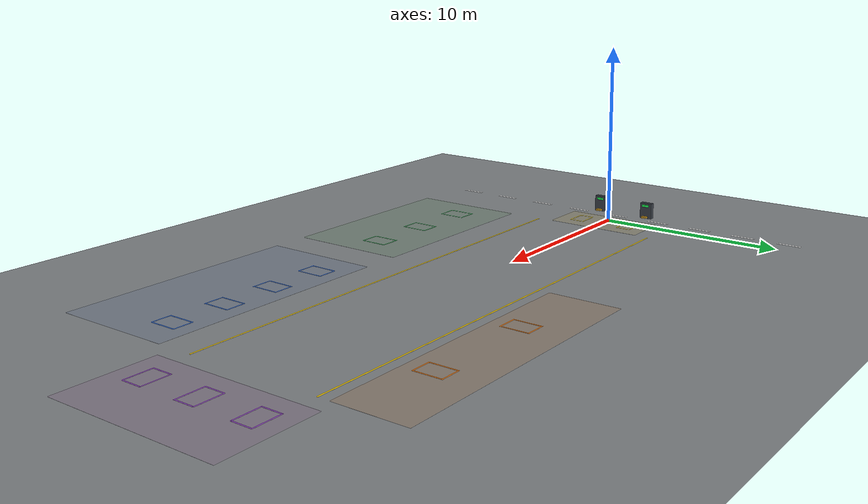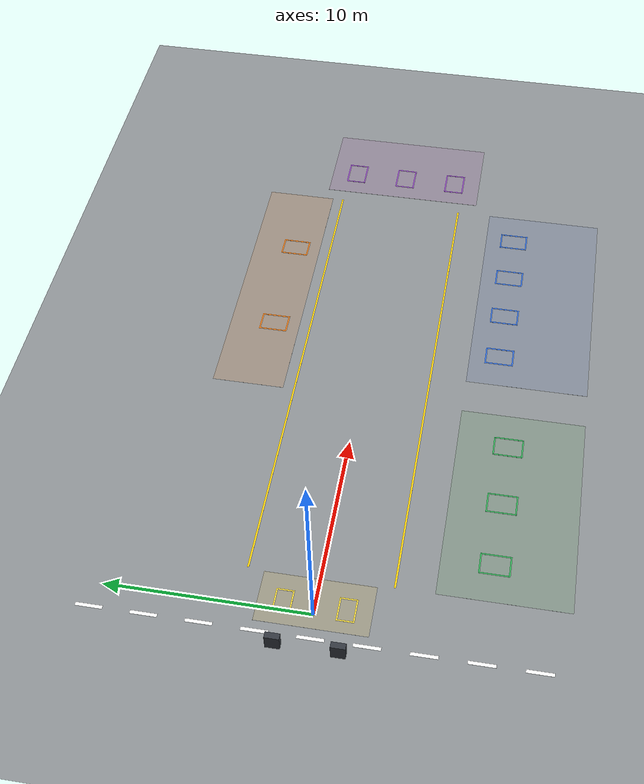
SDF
<sdf version="1.6">
 <world name="yektemak_factory">
  <model name="ground_plane">
   <static>true</static>
   <link name="link">
    <collision name="collision">
     <geometry><plane><normal>0 0 1</normal><size>120 120</size></plane></geometry>
     <surface><friction><ode><mu>1.0</mu><mu2>1.0</mu2></ode></friction></surface>
    </collision>
    <visual name="visual">
     <cast_shadows>false</cast_shadows>
     <geometry><plane><normal>0 0 1</normal><size>120 120</size></plane></geometry>
     <material>
      <ambient>0.44 0.46 0.46 1</ambient>
      <diffuse>0.55 0.57 0.58 1</diffuse>
      <specular>0.1 0.1 0.1 1</specular>
     </material>
    </visual>
   </link>
  </model>
  <model name="chargers">
   <static>true</static>
   <link name="link">
    <collision name="b99_c">
     <pose>-1.8 1.5 0.45 0 0 0</pose>
     <geometry><box><size>0.3 0.7 0.9</size></box></geometry>
    </collision>
    <visual name="b99_v">
     <pose>-1.8 1.5 0.45 0 0 0</pose>
     <geometry><box><size>0.3 0.7 0.9</size></box></geometry>
     <material>
      <ambient>0.16 0.18 0.20 1</ambient>
      <diffuse>0.2 0.22 0.25 1</diffuse>
      <specular>0.1 0.1 0.1 1</specular>
     </material>
    </visual>
    <visual name="b100_v">
     <pose>-1.63 1.5 0.75 0 0 0</pose>
     <cast_shadows>false</cast_shadows>
     <geometry><box><size>0.04 0.4 0.12</size></box></geometry>
     <material>
      <ambient>0.08 0.72 0.24 1</ambient>
      <diffuse>0.1 0.9 0.3 1</diffuse>
      <specular>0.1 0.1 0.1 1</specular>
      <emissive>0.1 0.9 0.3 1</emissive>
     </material>
    </visual>
    <collision name="b101_c">
     <pose>-1.5 1.5 0.1 0 0 0</pose>
     <geometry><box><size>0.25 0.3 0.08</size></box></geometry>
    </collision>
    <visual name="b101_v">
     <pose>-1.5 1.5 0.1 0 0 0</pose>
     <geometry><box><size>0.25 0.3 0.08</size></box></geometry>
     <material>
      <ambient>0.60 0.44 0.08 1</ambient>
      <diffuse>0.75 0.55 0.1 1</diffuse>
      <specular>0.1 0.1 0.1 1</specular>
     </material>
    </visual>
    <collision name="b102_c">
     <pose>-1.8 -1.5 0.45 0 0 0</pose>
     <geometry><box><size>0.3 0.7 0.9</size></box></geometry>
    </collision>
    <visual name="b102_v">
     <pose>-1.8 -1.5 0.45 0 0 0</pose>
     <geometry><box><size>0.3 0.7 0.9</size></box></geometry>
     <material>
      <ambient>0.16 0.18 0.20 1</ambient>
      <diffuse>0.2 0.22 0.25 1</diffuse>
      <specular>0.1 0.1 0.1 1</specular>
     </material>
    </visual>
    <visual name="b103_v">
     <pose>-1.63 -1.5 0.75 0 0 0</pose>
     <cast_shadows>false</cast_shadows>
     <geometry><box><size>0.04 0.4 0.12</size></box></geometry>
     <material>
      <ambient>0.08 0.72 0.24 1</ambient>
      <diffuse>0.1 0.9 0.3 1</diffuse>
      <specular>0.1 0.1 0.1 1</specular>
      <emissive>0.1 0.9 0.3 1</emissive>
     </material>
    </visual>
    <collision name="b104_c">
     <pose>-1.5 -1.5 0.1 0 0 0</pose>
     <geometry><box><size>0.25 0.3 0.08</size></box></geometry>
    </collision>
    <visual name="b104_v">
     <pose>-1.5 -1.5 0.1 0 0 0</pose>
     <geometry><box><size>0.25 0.3 0.08</size></box></geometry>
     <material>
      <ambient>0.60 0.44 0.08 1</ambient>
      <diffuse>0.75 0.55 0.1 1</diffuse>
      <specular>0.1 0.1 0.1 1</specular>
     </material>
    </visual>
   </link>
  </model>
  <model name="floor_markings">
   <static>true</static>
   <link name="link">
    <visual name="b105_v">
     <pose>7.5 -8.6 0.001 0 0 0</pose>
     <cast_shadows>false</cast_shadows>
     <geometry><box><size>11 6.4 0.002</size></box></geometry>
     <material>
      <ambient>0.41 0.45 0.42 1</ambient>
      <diffuse>0.508 0.5680000000000001 0.526 1</diffuse>
      <specular>0.1 0.1 0.1 1</specular>
     </material>
    </visual>
    <visual name="b106_v">
     <pose>21.5 -8.6 0.001 0 0 0</pose>
     <cast_shadows>false</cast_shadows>
     <geometry><box><size>13 6.4 0.002</size></box></geometry>
     <material>
      <ambient>0.41 0.43 0.47 1</ambient>
      <diffuse>0.508 0.538 0.5920000000000001 1</diffuse>
      <specular>0.1 0.1 0.1 1</specular>
     </material>
    </visual>
    <visual name="b107_v">
     <pose>20.5 6 0.001 0 0 0</pose>
     <cast_shadows>false</cast_shadows>
     <geometry><box><size>15 3.8 0.002</size></box></geometry>
     <material>
      <ambient>0.48 0.44 0.40 1</ambient>
      <diffuse>0.5980000000000001 0.544 0.49600000000000005 1</diffuse>
      <specular>0.1 0.1 0.1 1</specular>
     </material>
    </visual>
    <visual name="b108_v">
     <pose>31.3 0 0.001 0 0 0</pose>
     <cast_shadows>false</cast_shadows>
     <geometry><box><size>5 9 0.002</size></box></geometry>
     <material>
      <ambient>0.44 0.42 0.46 1</ambient>
      <diffuse>0.556 0.52 0.5800000000000001 1</diffuse>
      <specular>0.1 0.1 0.1 1</specular>
     </material>
    </visual>
    <visual name="b109_v">
     <pose>0.6 0 0.001 0 0 0</pose>
     <cast_shadows>false</cast_shadows>
     <geometry><box><size>2.6 5.4 0.002</size></box></geometry>
     <material>
      <ambient>0.48 0.47 0.41 1</ambient>
      <diffuse>0.5980000000000001 0.5860000000000001 0.514 1</diffuse>
      <specular>0.1 0.1 0.1 1</specular>
     </material>
    </visual>
    <visual name="b110_v">
     <pose>0.5 1.9 0.003 0 0 0</pose>
     <cast_shadows>false</cast_shadows>
     <geometry><box><size>1.22 0.07 0.002</size></box></geometry>
     <material>
      <ambient>0.76 0.68 0.20 1</ambient>
      <diffuse>0.95 0.85 0.25 1</diffuse>
      <specular>0.1 0.1 0.1 1</specular>
     </material>
    </visual>
    <visual name="b111_v">
     <pose>0.5 1.1 0.003 0 0 0</pose>
     <cast_shadows>false</cast_shadows>
     <geometry><box><size>1.22 0.07 0.002</size></box></geometry>
     <material>
      <ambient>0.76 0.68 0.20 1</ambient>
      <diffuse>0.95 0.85 0.25 1</diffuse>
      <specular>0.1 0.1 0.1 1</specular>
     </material>
    </visual>
    <visual name="b112_v">
     <pose>1.075 1.5 0.003 0 0 0</pose>
     <cast_shadows>false</cast_shadows>
     <geometry><box><size>0.07 0.8 0.002</size></box></geometry>
     <material>
      <ambient>0.76 0.68 0.20 1</ambient>
      <diffuse>0.95 0.85 0.25 1</diffuse>
      <specular>0.1 0.1 0.1 1</specular>
     </material>
    </visual>
    <visual name="b113_v">
     <pose>-0.075 1.5 0.003 0 0 0</pose>
     <cast_shadows>false</cast_shadows>
     <geometry><box><size>0.07 0.8 0.002</size></box></geometry>
     <material>
      <ambient>0.76 0.68 0.20 1</ambient>
      <diffuse>0.95 0.85 0.25 1</diffuse>
      <specular>0.1 0.1 0.1 1</specular>
     </material>
    </visual>
    <visual name="b114_v">
     <pose>0.5 -1.1 0.003 0 0 0</pose>
     <cast_shadows>false</cast_shadows>
     <geometry><box><size>1.22 0.07 0.002</size></box></geometry>
     <material>
      <ambient>0.76 0.68 0.20 1</ambient>
      <diffuse>0.95 0.85 0.25 1</diffuse>
      <specular>0.1 0.1 0.1 1</specular>
     </material>
    </visual>
    <visual name="b115_v">
     <pose>0.5 -1.9 0.003 0 0 0</pose>
     <cast_shadows>false</cast_shadows>
     <geometry><box><size>1.22 0.07 0.002</size></box></geometry>
     <material>
      <ambient>0.76 0.68 0.20 1</ambient>
      <diffuse>0.95 0.85 0.25 1</diffuse>
      <specular>0.1 0.1 0.1 1</specular>
     </material>
    </visual>
    <visual name="b116_v">
     <pose>1.075 -1.5 0.003 0 0 0</pose>
     <cast_shadows>false</cast_shadows>
     <geometry><box><size>0.07 0.8 0.002</size></box></geometry>
     <material>
      <ambient>0.76 0.68 0.20 1</ambient>
      <diffuse>0.95 0.85 0.25 1</diffuse>
      <specular>0.1 0.1 0.1 1</specular>
     </material>
    </visual>
    <visual name="b117_v">
     <pose>-0.075 -1.5 0.003 0 0 0</pose>
     <cast_shadows>false</cast_shadows>
     <geometry><box><size>0.07 0.8 0.002</size></box></geometry>
     <material>
      <ambient>0.76 0.68 0.20 1</ambient>
      <diffuse>0.95 0.85 0.25 1</diffuse>
      <specular>0.1 0.1 0.1 1</specular>
     </material>
    </visual>
    <visual name="b118_v">
     <pose>4 -7.275 0.003 0 0 0</pose>
     <cast_shadows>false</cast_shadows>
     <geometry><box><size>1.12 0.07 0.002</size></box></geometry>
     <material>
      <ambient>0.16 0.56 0.28 1</ambient>
      <diffuse>0.2 0.7 0.35 1</diffuse>
      <specular>0.1 0.1 0.1 1</specular>
     </material>
    </visual>
    <visual name="b119_v">
     <pose>4 -8.725 0.003 0 0 0</pose>
     <cast_shadows>false</cast_shadows>
     <geometry><box><size>1.12 0.07 0.002</size></box></geometry>
     <material>
      <ambient>0.16 0.56 0.28 1</ambient>
      <diffuse>0.2 0.7 0.35 1</diffuse>
      <specular>0.1 0.1 0.1 1</specular>
     </material>
    </visual>
    <visual name="b120_v">
     <pose>4.525 -8 0.003 0 0 0</pose>
     <cast_shadows>false</cast_shadows>
     <geometry><box><size>0.07 1.45 0.002</size></box></geometry>
     <material>
      <ambient>0.16 0.56 0.28 1</ambient>
      <diffuse>0.2 0.7 0.35 1</diffuse>
      <specular>0.1 0.1 0.1 1</specular>
     </material>
    </visual>
    <visual name="b121_v">
     <pose>3.475 -8 0.003 0 0 0</pose>
     <cast_shadows>false</cast_shadows>
     <geometry><box><size>0.07 1.45 0.002</size></box></geometry>
     <material>
      <ambient>0.16 0.56 0.28 1</ambient>
      <diffuse>0.2 0.7 0.35 1</diffuse>
      <specular>0.1 0.1 0.1 1</specular>
     </material>
    </visual>
    <visual name="b122_v">
     <pose>7.5 -7.275 0.003 0 0 0</pose>
     <cast_shadows>false</cast_shadows>
     <geometry><box><size>1.12 0.07 0.002</size></box></geometry>
     <material>
      <ambient>0.16 0.56 0.28 1</ambient>
      <diffuse>0.2 0.7 0.35 1</diffuse>
      <specular>0.1 0.1 0.1 1</specular>
     </material>
    </visual>
    <visual name="b123_v">
     <pose>7.5 -8.725 0.003 0 0 0</pose>
     <cast_shadows>false</cast_shadows>
     <geometry><box><size>1.12 0.07 0.002</size></box></geometry>
     <material>
      <ambient>0.16 0.56 0.28 1</ambient>
      <diffuse>0.2 0.7 0.35 1</diffuse>
      <specular>0.1 0.1 0.1 1</specular>
     </material>
    </visual>
    <visual name="b124_v">
     <pose>8.025 -8 0.003 0 0 0</pose>
     <cast_shadows>false</cast_shadows>
     <geometry><box><size>0.07 1.45 0.002</size></box></geometry>
     <material>
      <ambient>0.16 0.56 0.28 1</ambient>
      <diffuse>0.2 0.7 0.35 1</diffuse>
      <specular>0.1 0.1 0.1 1</specular>
     </material>
    </visual>
    <visual name="b125_v">
     <pose>6.975 -8 0.003 0 0 0</pose>
     <cast_shadows>false</cast_shadows>
     <geometry><box><size>0.07 1.45 0.002</size></box></geometry>
     <material>
      <ambient>0.16 0.56 0.28 1</ambient>
      <diffuse>0.2 0.7 0.35 1</diffuse>
      <specular>0.1 0.1 0.1 1</specular>
     </material>
    </visual>
    <visual name="b126_v">
     <pose>11 -7.275 0.003 0 0 0</pose>
     <cast_shadows>false</cast_shadows>
     <geometry><box><size>1.12 0.07 0.002</size></box></geometry>
     <material>
      <ambient>0.16 0.56 0.28 1</ambient>
      <diffuse>0.2 0.7 0.35 1</diffuse>
      <specular>0.1 0.1 0.1 1</specular>
     </material>
    </visual>
    <visual name="b127_v">
     <pose>11 -8.725 0.003 0 0 0</pose>
     <cast_shadows>false</cast_shadows>
     <geometry><box><size>1.12 0.07 0.002</size></box></geometry>
     <material>
      <ambient>0.16 0.56 0.28 1</ambient>
      <diffuse>0.2 0.7 0.35 1</diffuse>
      <specular>0.1 0.1 0.1 1</specular>
     </material>
    </visual>
    <visual name="b128_v">
     <pose>11.53 -8 0.003 0 0 0</pose>
     <cast_shadows>false</cast_shadows>
     <geometry><box><size>0.07 1.45 0.002</size></box></geometry>
     <material>
      <ambient>0.16 0.56 0.28 1</ambient>
      <diffuse>0.2 0.7 0.35 1</diffuse>
      <specular>0.1 0.1 0.1 1</specular>
     </material>
    </visual>
    <visual name="b129_v">
     <pose>10.47 -8 0.003 0 0 0</pose>
     <cast_shadows>false</cast_shadows>
     <geometry><box><size>0.07 1.45 0.002</size></box></geometry>
     <material>
      <ambient>0.16 0.56 0.28 1</ambient>
      <diffuse>0.2 0.7 0.35 1</diffuse>
      <specular>0.1 0.1 0.1 1</specular>
     </material>
    </visual>
    <visual name="b130_v">
     <pose>17 -6.275 0.003 0 0 0</pose>
     <cast_shadows>false</cast_shadows>
     <geometry><box><size>1.12 0.07 0.002</size></box></geometry>
     <material>
      <ambient>0.16 0.36 0.72 1</ambient>
      <diffuse>0.2 0.45 0.9 1</diffuse>
      <specular>0.1 0.1 0.1 1</specular>
     </material>
    </visual>
    <visual name="b131_v">
     <pose>17 -7.725 0.003 0 0 0</pose>
     <cast_shadows>false</cast_shadows>
     <geometry><box><size>1.12 0.07 0.002</size></box></geometry>
     <material>
      <ambient>0.16 0.36 0.72 1</ambient>
      <diffuse>0.2 0.45 0.9 1</diffuse>
      <specular>0.1 0.1 0.1 1</specular>
     </material>
    </visual>
    <visual name="b132_v">
     <pose>17.52 -7 0.003 0 0 0</pose>
     <cast_shadows>false</cast_shadows>
     <geometry><box><size>0.07 1.45 0.002</size></box></geometry>
     <material>
      <ambient>0.16 0.36 0.72 1</ambient>
      <diffuse>0.2 0.45 0.9 1</diffuse>
      <specular>0.1 0.1 0.1 1</specular>
     </material>
    </visual>
    <visual name="b133_v">
     <pose>16.48 -7 0.003 0 0 0</pose>
     <cast_shadows>false</cast_shadows>
     <geometry><box><size>0.07 1.45 0.002</size></box></geometry>
     <material>
      <ambient>0.16 0.36 0.72 1</ambient>
      <diffuse>0.2 0.45 0.9 1</diffuse>
      <specular>0.1 0.1 0.1 1</specular>
     </material>
    </visual>
    <visual name="b134_v">
     <pose>20 -6.275 0.003 0 0 0</pose>
     <cast_shadows>false</cast_shadows>
     <geometry><box><size>1.12 0.07 0.002</size></box></geometry>
     <material>
      <ambient>0.16 0.36 0.72 1</ambient>
      <diffuse>0.2 0.45 0.9 1</diffuse>
      <specular>0.1 0.1 0.1 1</specular>
     </material>
    </visual>
    <visual name="b135_v">
     <pose>20 -7.725 0.003 0 0 0</pose>
     <cast_shadows>false</cast_shadows>
     <geometry><box><size>1.12 0.07 0.002</size></box></geometry>
     <material>
      <ambient>0.16 0.36 0.72 1</ambient>
      <diffuse>0.2 0.45 0.9 1</diffuse>
      <specular>0.1 0.1 0.1 1</specular>
     </material>
    </visual>
    <visual name="b136_v">
     <pose>20.52 -7 0.003 0 0 0</pose>
     <cast_shadows>false</cast_shadows>
     <geometry><box><size>0.07 1.45 0.002</size></box></geometry>
     <material>
      <ambient>0.16 0.36 0.72 1</ambient>
      <diffuse>0.2 0.45 0.9 1</diffuse>
      <specular>0.1 0.1 0.1 1</specular>
     </material>
    </visual>
    <visual name="b137_v">
     <pose>19.48 -7 0.003 0 0 0</pose>
     <cast_shadows>false</cast_shadows>
     <geometry><box><size>0.07 1.45 0.002</size></box></geometry>
     <material>
      <ambient>0.16 0.36 0.72 1</ambient>
      <diffuse>0.2 0.45 0.9 1</diffuse>
      <specular>0.1 0.1 0.1 1</specular>
     </material>
    </visual>
    <visual name="b138_v">
     <pose>23 -6.275 0.003 0 0 0</pose>
     <cast_shadows>false</cast_shadows>
     <geometry><box><size>1.12 0.07 0.002</size></box></geometry>
     <material>
      <ambient>0.16 0.36 0.72 1</ambient>
      <diffuse>0.2 0.45 0.9 1</diffuse>
      <specular>0.1 0.1 0.1 1</specular>
     </material>
    </visual>
    <visual name="b139_v">
     <pose>23 -7.725 0.003 0 0 0</pose>
     <cast_shadows>false</cast_shadows>
     <geometry><box><size>1.12 0.07 0.002</size></box></geometry>
     <material>
      <ambient>0.16 0.36 0.72 1</ambient>
      <diffuse>0.2 0.45 0.9 1</diffuse>
      <specular>0.1 0.1 0.1 1</specular>
     </material>
    </visual>
    <visual name="b140_v">
     <pose>23.52 -7 0.003 0 0 0</pose>
     <cast_shadows>false</cast_shadows>
     <geometry><box><size>0.07 1.45 0.002</size></box></geometry>
     <material>
      <ambient>0.16 0.36 0.72 1</ambient>
      <diffuse>0.2 0.45 0.9 1</diffuse>
      <specular>0.1 0.1 0.1 1</specular>
     </material>
    </visual>
    <visual name="b141_v">
     <pose>22.48 -7 0.003 0 0 0</pose>
     <cast_shadows>false</cast_shadows>
     <geometry><box><size>0.07 1.45 0.002</size></box></geometry>
     <material>
      <ambient>0.16 0.36 0.72 1</ambient>
      <diffuse>0.2 0.45 0.9 1</diffuse>
      <specular>0.1 0.1 0.1 1</specular>
     </material>
    </visual>
    <visual name="b142_v">
     <pose>26 -6.275 0.003 0 0 0</pose>
     <cast_shadows>false</cast_shadows>
     <geometry><box><size>1.12 0.07 0.002</size></box></geometry>
     <material>
      <ambient>0.16 0.36 0.72 1</ambient>
      <diffuse>0.2 0.45 0.9 1</diffuse>
      <specular>0.1 0.1 0.1 1</specular>
     </material>
    </visual>
    <visual name="b143_v">
     <pose>26 -7.725 0.003 0 0 0</pose>
     <cast_shadows>false</cast_shadows>
     <geometry><box><size>1.12 0.07 0.002</size></box></geometry>
     <material>
      <ambient>0.16 0.36 0.72 1</ambient>
      <diffuse>0.2 0.45 0.9 1</diffuse>
      <specular>0.1 0.1 0.1 1</specular>
     </material>
    </visual>
    <visual name="b144_v">
     <pose>26.52 -7 0.003 0 0 0</pose>
     <cast_shadows>false</cast_shadows>
     <geometry><box><size>0.07 1.45 0.002</size></box></geometry>
     <material>
      <ambient>0.16 0.36 0.72 1</ambient>
      <diffuse>0.2 0.45 0.9 1</diffuse>
      <specular>0.1 0.1 0.1 1</specular>
     </material>
    </visual>
    <visual name="b145_v">
     <pose>25.48 -7 0.003 0 0 0</pose>
     <cast_shadows>false</cast_shadows>
     <geometry><box><size>0.07 1.45 0.002</size></box></geometry>
     <material>
      <ambient>0.16 0.36 0.72 1</ambient>
      <diffuse>0.2 0.45 0.9 1</diffuse>
      <specular>0.1 0.1 0.1 1</specular>
     </material>
    </visual>
    <visual name="b146_v">
     <pose>17.5 6.225 0.003 0 0 0</pose>
     <cast_shadows>false</cast_shadows>
     <geometry><box><size>1.12 0.07 0.002</size></box></geometry>
     <material>
      <ambient>0.76 0.40 0.08 1</ambient>
      <diffuse>0.95 0.5 0.1 1</diffuse>
      <specular>0.1 0.1 0.1 1</specular>
     </material>
    </visual>
    <visual name="b147_v">
     <pose>17.5 4.775 0.003 0 0 0</pose>
     <cast_shadows>false</cast_shadows>
     <geometry><box><size>1.12 0.07 0.002</size></box></geometry>
     <material>
      <ambient>0.76 0.40 0.08 1</ambient>
      <diffuse>0.95 0.5 0.1 1</diffuse>
      <specular>0.1 0.1 0.1 1</specular>
     </material>
    </visual>
    <visual name="b148_v">
     <pose>18.02 5.5 0.003 0 0 0</pose>
     <cast_shadows>false</cast_shadows>
     <geometry><box><size>0.07 1.45 0.002</size></box></geometry>
     <material>
      <ambient>0.76 0.40 0.08 1</ambient>
      <diffuse>0.95 0.5 0.1 1</diffuse>
      <specular>0.1 0.1 0.1 1</specular>
     </material>
    </visual>
    <visual name="b149_v">
     <pose>16.98 5.5 0.003 0 0 0</pose>
     <cast_shadows>false</cast_shadows>
     <geometry><box><size>0.07 1.45 0.002</size></box></geometry>
     <material>
      <ambient>0.76 0.40 0.08 1</ambient>
      <diffuse>0.95 0.5 0.1 1</diffuse>
      <specular>0.1 0.1 0.1 1</specular>
     </material>
    </visual>
    <visual name="b150_v">
     <pose>23.5 6.225 0.003 0 0 0</pose>
     <cast_shadows>false</cast_shadows>
     <geometry><box><size>1.12 0.07 0.002</size></box></geometry>
     <material>
      <ambient>0.76 0.40 0.08 1</ambient>
      <diffuse>0.95 0.5 0.1 1</diffuse>
      <specular>0.1 0.1 0.1 1</specular>
     </material>
    </visual>
    <visual name="b151_v">
     <pose>23.5 4.775 0.003 0 0 0</pose>
     <cast_shadows>false</cast_shadows>
     <geometry><box><size>1.12 0.07 0.002</size></box></geometry>
     <material>
      <ambient>0.76 0.40 0.08 1</ambient>
      <diffuse>0.95 0.5 0.1 1</diffuse>
      <specular>0.1 0.1 0.1 1</specular>
     </material>
    </visual>
    <visual name="b152_v">
     <pose>24.02 5.5 0.003 0 0 0</pose>
     <cast_shadows>false</cast_shadows>
     <geometry><box><size>0.07 1.45 0.002</size></box></geometry>
     <material>
      <ambient>0.76 0.40 0.08 1</ambient>
      <diffuse>0.95 0.5 0.1 1</diffuse>
      <specular>0.1 0.1 0.1 1</specular>
     </material>
    </visual>
    <visual name="b153_v">
     <pose>22.98 5.5 0.003 0 0 0</pose>
     <cast_shadows>false</cast_shadows>
     <geometry><box><size>0.07 1.45 0.002</size></box></geometry>
     <material>
      <ambient>0.76 0.40 0.08 1</ambient>
      <diffuse>0.95 0.5 0.1 1</diffuse>
      <specular>0.1 0.1 0.1 1</specular>
     </material>
    </visual>
    <visual name="b154_v">
     <pose>30.5 -2.475 0.003 0 0 0</pose>
     <cast_shadows>false</cast_shadows>
     <geometry><box><size>1.52 0.07 0.002</size></box></geometry>
     <material>
      <ambient>0.48 0.24 0.64 1</ambient>
      <diffuse>0.6 0.3 0.8 1</diffuse>
      <specular>0.1 0.1 0.1 1</specular>
     </material>
    </visual>
    <visual name="b155_v">
     <pose>30.5 -3.525 0.003 0 0 0</pose>
     <cast_shadows>false</cast_shadows>
     <geometry><box><size>1.52 0.07 0.002</size></box></geometry>
     <material>
      <ambient>0.48 0.24 0.64 1</ambient>
      <diffuse>0.6 0.3 0.8 1</diffuse>
      <specular>0.1 0.1 0.1 1</specular>
     </material>
    </visual>
    <visual name="b156_v">
     <pose>31.23 -3 0.003 0 0 0</pose>
     <cast_shadows>false</cast_shadows>
     <geometry><box><size>0.07 1.05 0.002</size></box></geometry>
     <material>
      <ambient>0.48 0.24 0.64 1</ambient>
      <diffuse>0.6 0.3 0.8 1</diffuse>
      <specular>0.1 0.1 0.1 1</specular>
     </material>
    </visual>
    <visual name="b157_v">
     <pose>29.77 -3 0.003 0 0 0</pose>
     <cast_shadows>false</cast_shadows>
     <geometry><box><size>0.07 1.05 0.002</size></box></geometry>
     <material>
      <ambient>0.48 0.24 0.64 1</ambient>
      <diffuse>0.6 0.3 0.8 1</diffuse>
      <specular>0.1 0.1 0.1 1</specular>
     </material>
    </visual>
    <visual name="b158_v">
     <pose>30.5 0.525 0.003 0 0 0</pose>
     <cast_shadows>false</cast_shadows>
     <geometry><box><size>1.52 0.07 0.002</size></box></geometry>
     <material>
      <ambient>0.48 0.24 0.64 1</ambient>
      <diffuse>0.6 0.3 0.8 1</diffuse>
      <specular>0.1 0.1 0.1 1</specular>
     </material>
    </visual>
    <visual name="b159_v">
     <pose>30.5 -0.525 0.003 0 0 0</pose>
     <cast_shadows>false</cast_shadows>
     <geometry><box><size>1.52 0.07 0.002</size></box></geometry>
     <material>
      <ambient>0.48 0.24 0.64 1</ambient>
      <diffuse>0.6 0.3 0.8 1</diffuse>
      <specular>0.1 0.1 0.1 1</specular>
     </material>
    </visual>
    <visual name="b160_v">
     <pose>31.23 0 0.003 0 0 0</pose>
     <cast_shadows>false</cast_shadows>
     <geometry><box><size>0.07 1.05 0.002</size></box></geometry>
     <material>
      <ambient>0.48 0.24 0.64 1</ambient>
      <diffuse>0.6 0.3 0.8 1</diffuse>
      <specular>0.1 0.1 0.1 1</specular>
     </material>
    </visual>
    <visual name="b161_v">
     <pose>29.77 0 0.003 0 0 0</pose>
     <cast_shadows>false</cast_shadows>
     <geometry><box><size>0.07 1.05 0.002</size></box></geometry>
     <material>
      <ambient>0.48 0.24 0.64 1</ambient>
      <diffuse>0.6 0.3 0.8 1</diffuse>
      <specular>0.1 0.1 0.1 1</specular>
     </material>
    </visual>
    <visual name="b162_v">
     <pose>30.5 3.525 0.003 0 0 0</pose>
     <cast_shadows>false</cast_shadows>
     <geometry><box><size>1.52 0.07 0.002</size></box></geometry>
     <material>
      <ambient>0.48 0.24 0.64 1</ambient>
      <diffuse>0.6 0.3 0.8 1</diffuse>
      <specular>0.1 0.1 0.1 1</specular>
     </material>
    </visual>
    <visual name="b163_v">
     <pose>30.5 2.475 0.003 0 0 0</pose>
     <cast_shadows>false</cast_shadows>
     <geometry><box><size>1.52 0.07 0.002</size></box></geometry>
     <material>
      <ambient>0.48 0.24 0.64 1</ambient>
      <diffuse>0.6 0.3 0.8 1</diffuse>
      <specular>0.1 0.1 0.1 1</specular>
     </material>
    </visual>
    <visual name="b164_v">
     <pose>31.23 3 0.003 0 0 0</pose>
     <cast_shadows>false</cast_shadows>
     <geometry><box><size>0.07 1.05 0.002</size></box></geometry>
     <material>
      <ambient>0.48 0.24 0.64 1</ambient>
      <diffuse>0.6 0.3 0.8 1</diffuse>
      <specular>0.1 0.1 0.1 1</specular>
     </material>
    </visual>
    <visual name="b165_v">
     <pose>29.77 3 0.003 0 0 0</pose>
     <cast_shadows>false</cast_shadows>
     <geometry><box><size>0.07 1.05 0.002</size></box></geometry>
     <material>
      <ambient>0.48 0.24 0.64 1</ambient>
      <diffuse>0.6 0.3 0.8 1</diffuse>
      <specular>0.1 0.1 0.1 1</specular>
     </material>
    </visual>
    <visual name="b166_v">
     <pose>15 3.5 0.003 0 0 0</pose>
     <cast_shadows>false</cast_shadows>
     <geometry><box><size>26 0.09 0.002</size></box></geometry>
     <material>
      <ambient>0.78 0.66 0.04 1</ambient>
      <diffuse>0.98 0.82 0.05 1</diffuse>
      <specular>0.1 0.1 0.1 1</specular>
     </material>
    </visual>
    <visual name="b167_v">
     <pose>15 -3.5 0.003 0 0 0</pose>
     <cast_shadows>false</cast_shadows>
     <geometry><box><size>26 0.09 0.002</size></box></geometry>
     <material>
      <ambient>0.78 0.66 0.04 1</ambient>
      <diffuse>0.98 0.82 0.05 1</diffuse>
      <specular>0.1 0.1 0.1 1</specular>
     </material>
    </visual>
    <visual name="b168_v">
     <pose>-1.2 -10.5 0.003 0 0 0</pose>
     <cast_shadows>false</cast_shadows>
     <geometry><box><size>0.18 1.3 0.002</size></box></geometry>
     <material>
      <ambient>0.76 0.76 0.76 1</ambient>
      <diffuse>0.95 0.95 0.95 1</diffuse>
      <specular>0.1 0.1 0.1 1</specular>
     </material>
    </visual>
    <visual name="b169_v">
     <pose>-1.2 -7.9 0.003 0 0 0</pose>
     <cast_shadows>false</cast_shadows>
     <geometry><box><size>0.18 1.3 0.002</size></box></geometry>
     <material>
      <ambient>0.76 0.76 0.76 1</ambient>
      <diffuse>0.95 0.95 0.95 1</diffuse>
      <specular>0.1 0.1 0.1 1</specular>
     </material>
    </visual>
    <visual name="b170_v">
     <pose>-1.2 -5.3 0.003 0 0 0</pose>
     <cast_shadows>false</cast_shadows>
     <geometry><box><size>0.18 1.3 0.002</size></box></geometry>
     <material>
      <ambient>0.76 0.76 0.76 1</ambient>
      <diffuse>0.95 0.95 0.95 1</diffuse>
      <specular>0.1 0.1 0.1 1</specular>
     </material>
    </visual>
    <visual name="b171_v">
     <pose>-1.2 -2.7 0.003 0 0 0</pose>
     <cast_shadows>false</cast_shadows>
     <geometry><box><size>0.18 1.3 0.002</size></box></geometry>
     <material>
      <ambient>0.76 0.76 0.76 1</ambient>
      <diffuse>0.95 0.95 0.95 1</diffuse>
      <specular>0.1 0.1 0.1 1</specular>
     </material>
    </visual>
    <visual name="b172_v">
     <pose>-1.2 -0.1 0.003 0 0 0</pose>
     <cast_shadows>false</cast_shadows>
     <geometry><box><size>0.18 1.3 0.002</size></box></geometry>
     <material>
      <ambient>0.76 0.76 0.76 1</ambient>
      <diffuse>0.95 0.95 0.95 1</diffuse>
      <specular>0.1 0.1 0.1 1</specular>
     </material>
    </visual>
    <visual name="b173_v">
     <pose>-1.2 2.5 0.003 0 0 0</pose>
     <cast_shadows>false</cast_shadows>
     <geometry><box><size>0.18 1.3 0.002</size></box></geometry>
     <material>
      <ambient>0.76 0.76 0.76 1</ambient>
      <diffuse>0.95 0.95 0.95 1</diffuse>
      <specular>0.1 0.1 0.1 1</specular>
     </material>
    </visual>
    <visual name="b174_v">
     <pose>-1.2 5.1 0.003 0 0 0</pose>
     <cast_shadows>false</cast_shadows>
     <geometry><box><size>0.18 1.3 0.002</size></box></geometry>
     <material>
      <ambient>0.76 0.76 0.76 1</ambient>
      <diffuse>0.95 0.95 0.95 1</diffuse>
      <specular>0.1 0.1 0.1 1</specular>
     </material>
    </visual>
    <visual name="b175_v">
     <pose>-1.2 7.7 0.003 0 0 0</pose>
     <cast_shadows>false</cast_shadows>
     <geometry><box><size>0.18 1.3 0.002</size></box></geometry>
     <material>
      <ambient>0.76 0.76 0.76 1</ambient>
      <diffuse>0.95 0.95 0.95 1</diffuse>
      <specular>0.1 0.1 0.1 1</specular>
     </material>
    </visual>
    <visual name="b176_v">
     <pose>-1.2 10.3 0.003 0 0 0</pose>
     <cast_shadows>false</cast_shadows>
     <geometry><box><size>0.18 1.3 0.002</size></box></geometry>
     <material>
      <ambient>0.76 0.76 0.76 1</ambient>
      <diffuse>0.95 0.95 0.95 1</diffuse>
      <specular>0.1 0.1 0.1 1</specular>
     </material>
    </visual>
   </link>
  </model>
 </world>
</sdf>
